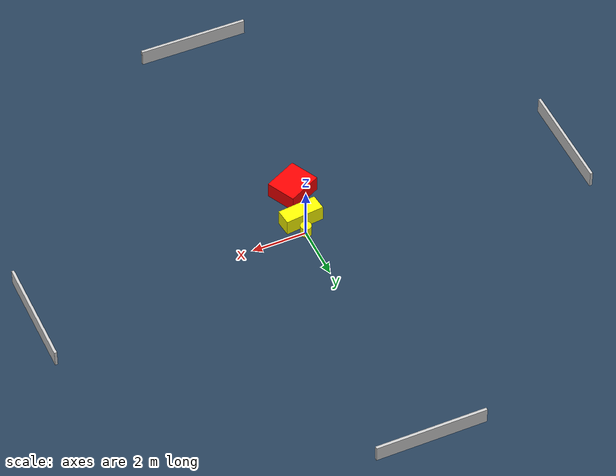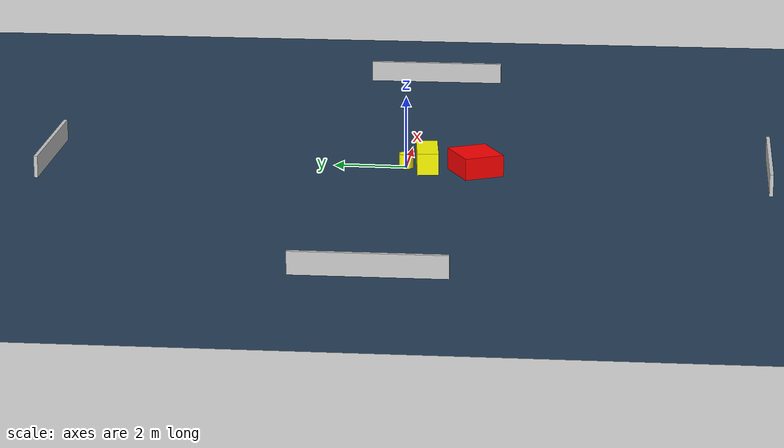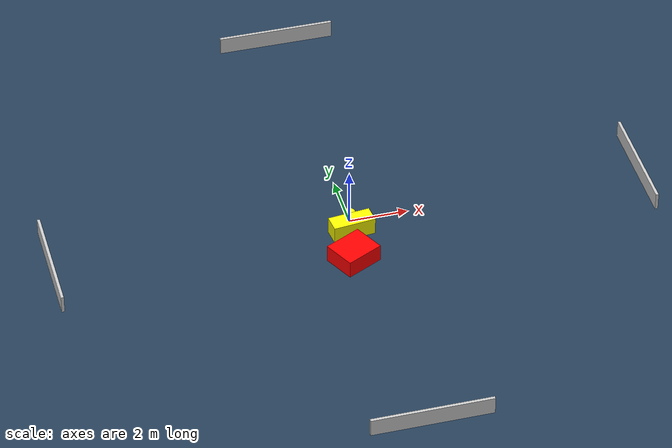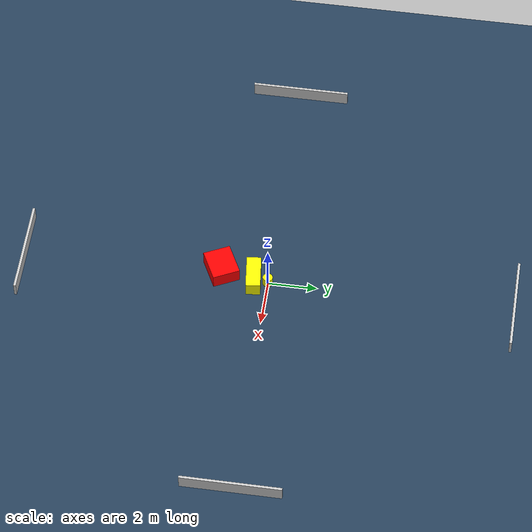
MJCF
<?xml version="1.0" ?>
<mujoco model="generated_environment">
  <option timestep="0.01" integrator="RK4" cone="elliptic"/>
  <default>
    <geom density="1"/>
  </default>
  <asset>
    <texture builtin="gradient" height="3072" name="skybox" rgb1="0.3 0.5 0.7" rgb2="0 0 0" type="skybox" width="512"/>
    <texture builtin="checker" height="300" name="groundplane" rgb1="0.2 0.3 0.4" rgb2="0.1 0.2 0.3" type="2d" width="300"/>
    <material name="groundplane" reflectance="0.2" texrepeat="5 5" texture="groundplane"/>
  </asset>
  <worldbody>
    <light dir="0 0 -1" directional="true" pos="0 0 1.5"/>
    <geom condim="3" friction="0.5 0.005 0.001" material="groundplane" name="floor" pos="0 0 0" size="0 0 0.05" type="plane"/>
    <body name="walls">
      <geom name="wall_1" condim="4" pos="-10.0 0.0 0.3" rgba="0.800000011920929 0.800000011920929 0.800000011920929 1.0" size="0.05 2.0 0.3" type="box"/>
      <geom name="wall_2" condim="4" pos="10.0 0.0 0.3" rgba="0.800000011920929 0.800000011920929 0.800000011920929 1.0" size="0.05 2.0 0.3" type="box"/>
      <geom name="wall_3" condim="4" pos="0.0 -10.0 0.3" rgba="0.800000011920929 0.800000011920929 0.800000011920929 1.0" size="2.0 0.05 0.3" type="box"/>
      <geom name="wall_4" condim="4" pos="0.0 10.0 0.3" rgba="0.800000011920929 0.800000011920929 0.800000011920929 1.0" size="2.0 0.05 0.3" type="box"/>
    </body>
    <body name="robot">
      <joint name="joint_x" type="slide" pos="0 0 0" axis="1 0 0"/>
      <joint name="joint_y" type="slide" pos="0 0 0" axis="0 1 0"/>
      <geom name="robot" type="cylinder" pos="0.0 0.0 0.2" size="0.2 0.2 0.0" mass="5.0" friction="1.0 0.005 0.0001" condim="4" rgba="1.0 1.0 0.0 1.0"/>
    </body>
    <body name="obstacle_1_movable">
      <geom name="obstacle_1_movable" condim="4" pos="-0.06903523718778273 -0.5927168639263218 0.3" euler="0 0 96.30031782460986" friction="0.0 0.005 0.001" rgba="1.0 1.0 0.0 1.0" size="0.29589155383775684 0.7140687293913146 0.3" type="box" mass="0.1"/>
      <joint type="free"/>
    </body>
    <body name="obstacle_2_static">
      <geom name="obstacle_2_static" condim="4" pos="-0.3621290470222629 -1.9442914112425262 0.3" euler="0 0 26.636829914806633" friction="0.0 0.005 0.001" rgba="1.0 0.0 0.0 1.0" size="0.660494432562355 0.5604417856600611 0.3" type="box"/>
    </body>
  </worldbody>
  <actuator>
    <motor name="actuator_x" joint="joint_x" gear="1" ctrlrange="-1 1"/>
    <motor name="actuator_y" joint="joint_y" gear="1" ctrlrange="-1 1"/>
  </actuator>
</mujoco>
